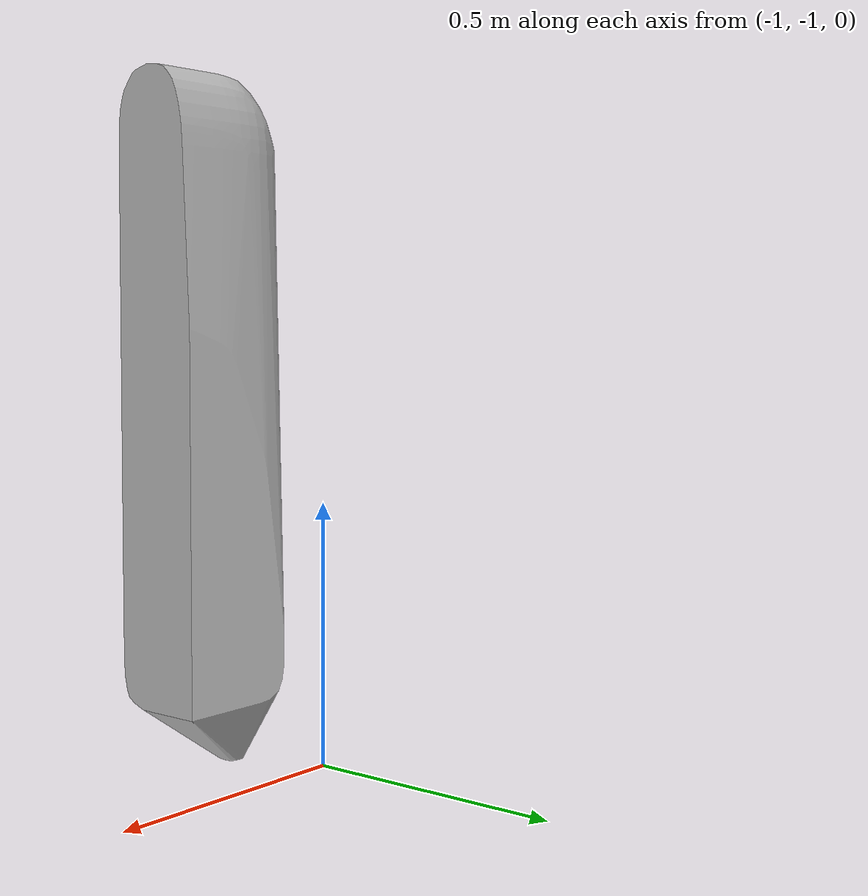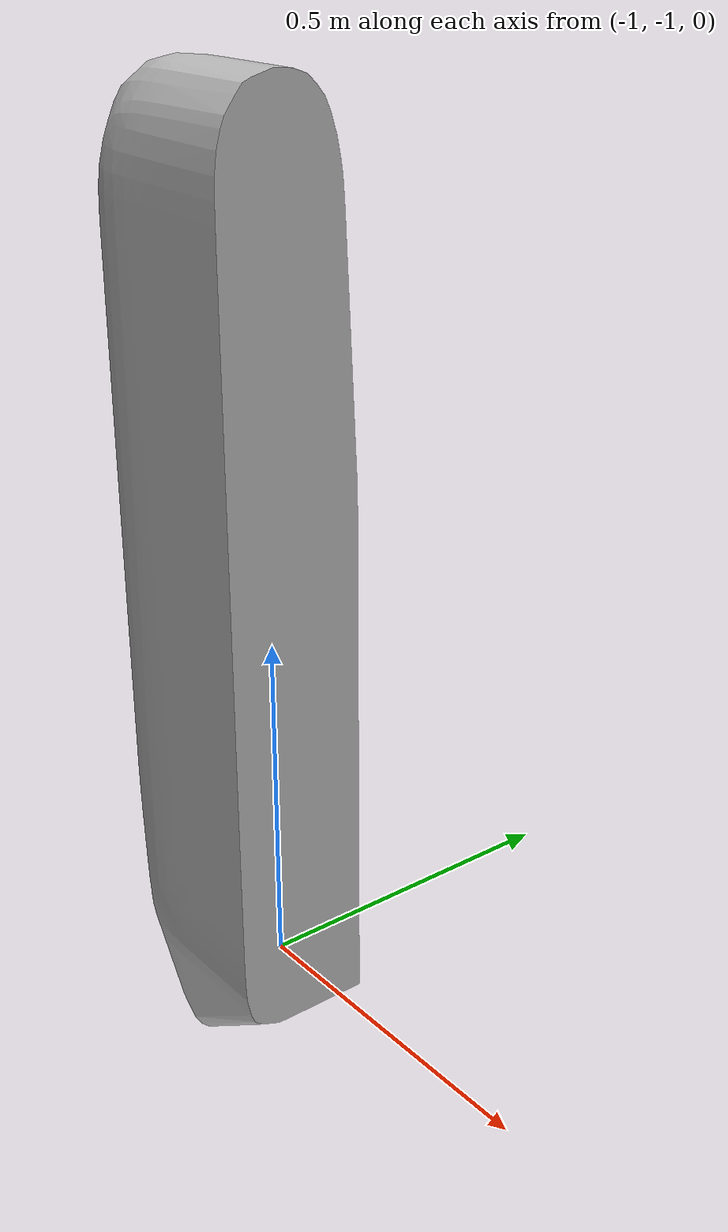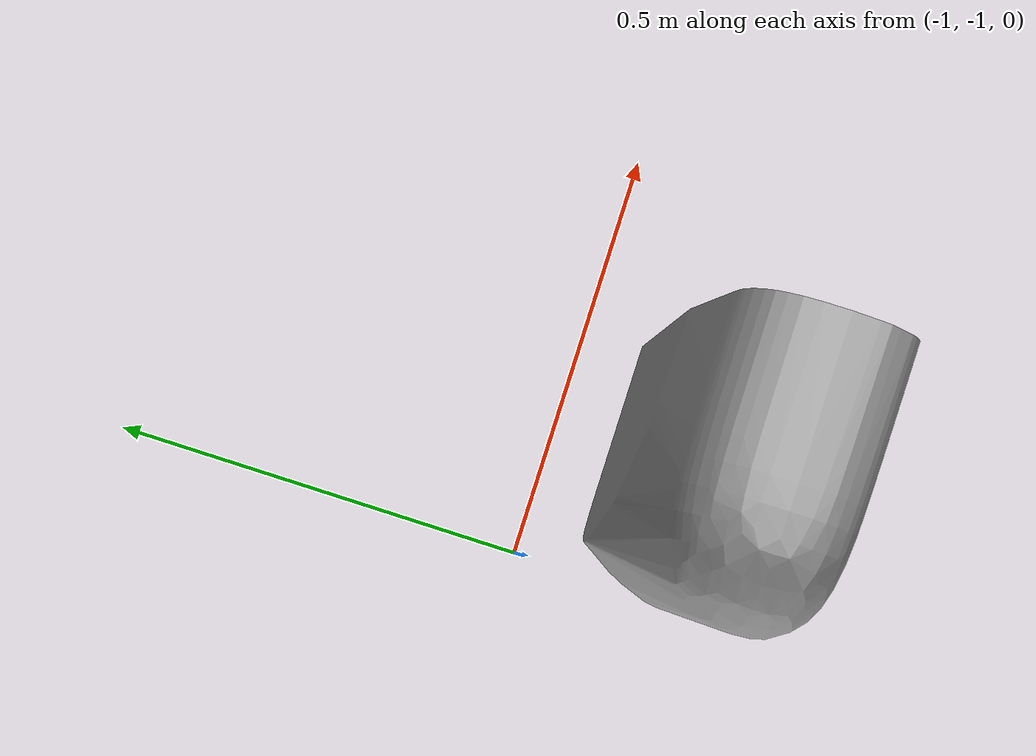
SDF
<?xml version='1.0' encoding='utf-8'?>
<sdf version="1.7">
  <model name="king_bed">
    <link name="base_link">
      <inertial>
        <mass>100.000000</mass>
        <pose>0.000344 0.449646 0.149121 0 0 0</pose>
        <inertia>
          <ixx>57.980163</ixx>
          <iyy>81.197730</iyy>
          <izz>32.341679</izz>
          <ixy>-0.007910</ixy>
          <ixz>-0.053320</ixz>
          <iyz>-5.360965</iyz>
        </inertia>
      </inertial>
      <visual name="visual">
        <geometry>
          <mesh>
            <uri>king_bed.gltf</uri>
          </mesh>
        </geometry>
      </visual>
      <collision name="collision_0">
        <surface>
          <friction>
            <ode>
              <mu>0.600</mu>
              <mu2>0.600</mu2>
            </ode>
          </friction>
        </surface>
        <geometry>
          <mesh>
            <uri>king_bed_collision_0.obj</uri>
          </mesh>
        </geometry>
      </collision>
      <collision name="collision_1">
        <surface>
          <friction>
            <ode>
              <mu>0.600</mu>
              <mu2>0.600</mu2>
            </ode>
          </friction>
        </surface>
        <geometry>
          <mesh>
            <uri>king_bed_collision_1.obj</uri>
          </mesh>
        </geometry>
      </collision>
      <collision name="collision_2">
        <surface>
          <friction>
            <ode>
              <mu>0.600</mu>
              <mu2>0.600</mu2>
            </ode>
          </friction>
        </surface>
        <geometry>
          <mesh>
            <uri>king_bed_collision_2.obj</uri>
          </mesh>
        </geometry>
      </collision>
      <collision name="collision_3">
        <surface>
          <friction>
            <ode>
              <mu>0.600</mu>
              <mu2>0.600</mu2>
            </ode>
          </friction>
        </surface>
        <geometry>
          <mesh>
            <uri>king_bed_collision_3.obj</uri>
          </mesh>
        </geometry>
      </collision>
      <collision name="collision_4">
        <surface>
          <friction>
            <ode>
              <mu>0.600</mu>
              <mu2>0.600</mu2>
            </ode>
          </friction>
        </surface>
        <geometry>
          <mesh>
            <uri>king_bed_collision_4.obj</uri>
          </mesh>
        </geometry>
      </collision>
      <collision name="collision_5">
        <surface>
          <friction>
            <ode>
              <mu>0.600</mu>
              <mu2>0.600</mu2>
            </ode>
          </friction>
        </surface>
        <geometry>
          <mesh>
            <uri>king_bed_collision_5.obj</uri>
          </mesh>
        </geometry>
      </collision>
      <collision name="collision_6">
        <surface>
          <friction>
            <ode>
              <mu>0.600</mu>
              <mu2>0.600</mu2>
            </ode>
          </friction>
        </surface>
        <geometry>
          <mesh>
            <uri>king_bed_collision_6.obj</uri>
          </mesh>
        </geometry>
      </collision>
    </link>
  </model>
</sdf>
